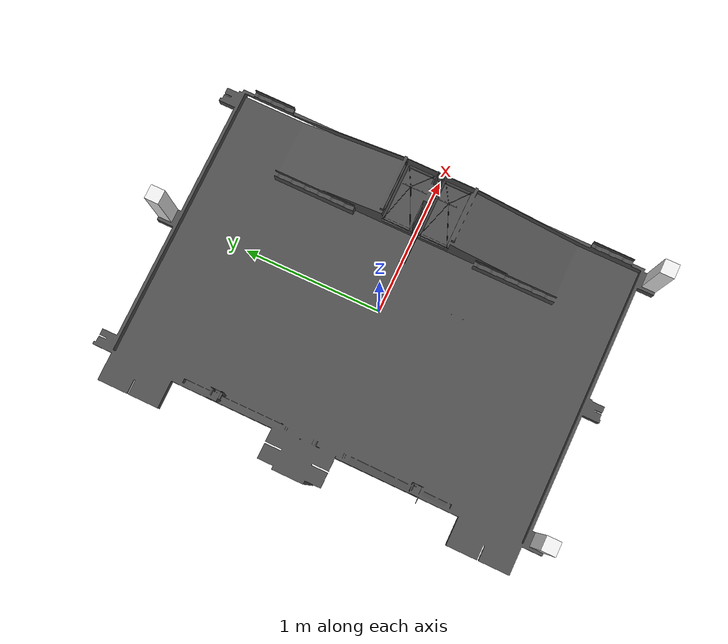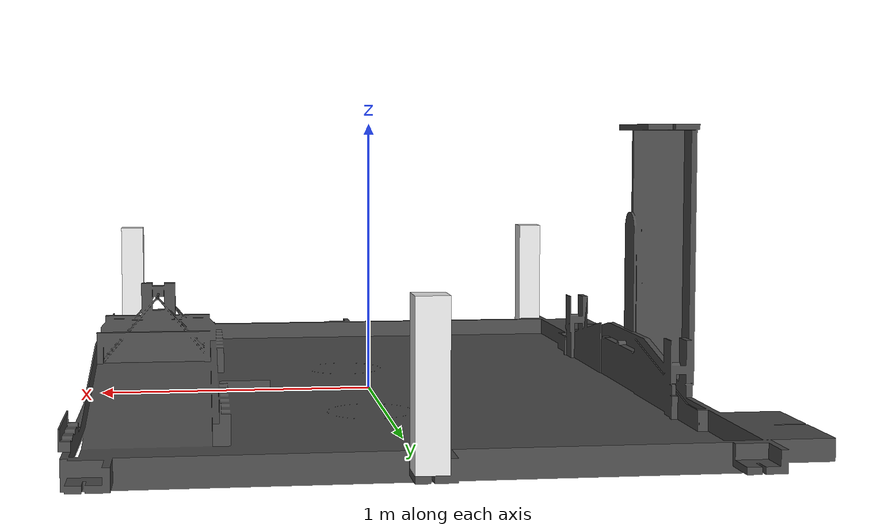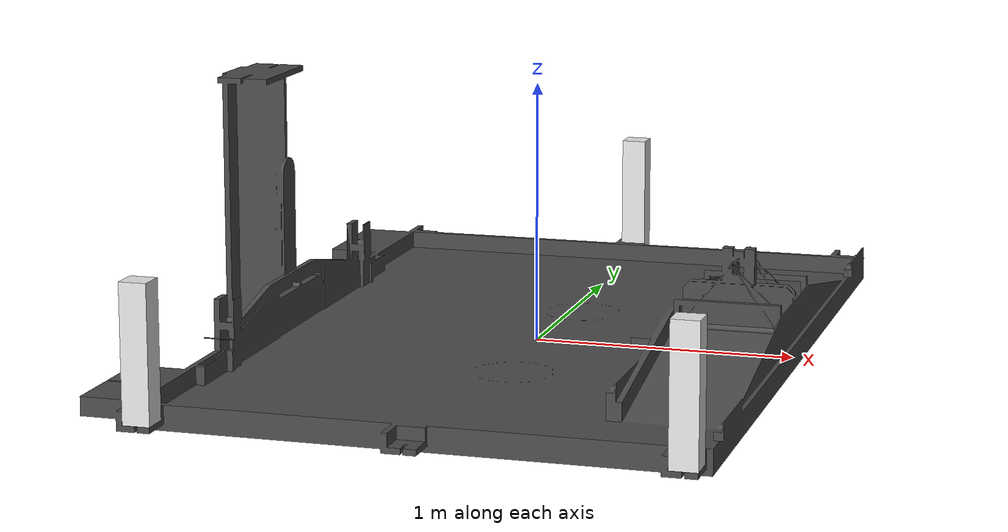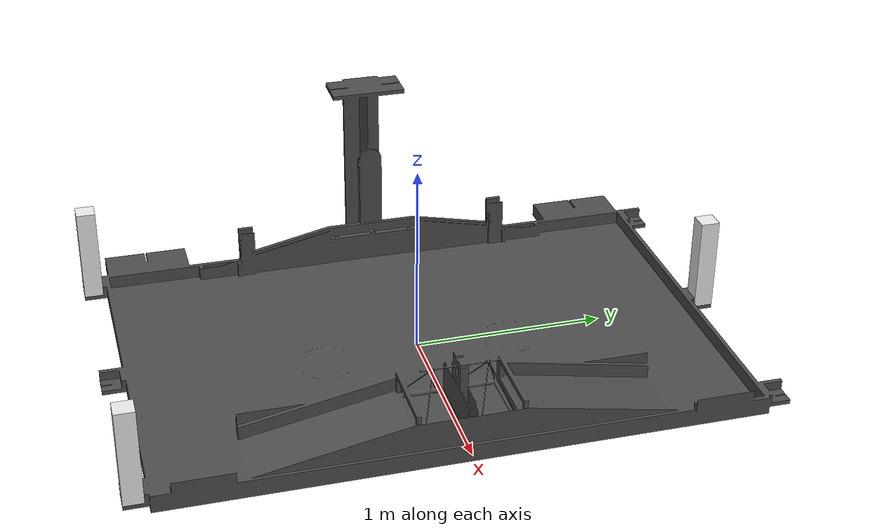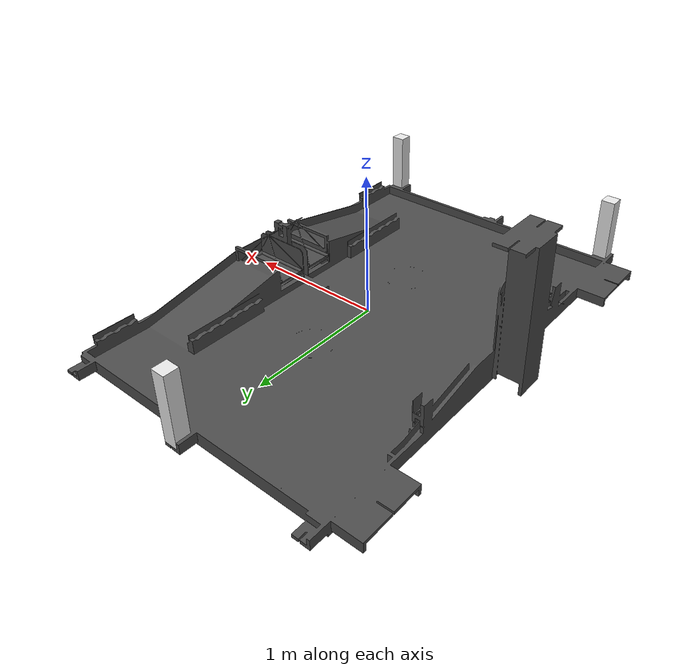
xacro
<?xml version="1.0"?>
<robot name="table_2019" xmlns:xacro="http://ros.org/wiki/xacro">
	<xacro:property name="world_laser_retro" value="10.0"/>

    <xacro:property name="beacon_width" value="0.1" />
    <xacro:property name="beacon_height" value="0.5" />
	<xacro:property name="beacon_laser_retro" value="100.0"/>
	<xacro:property name="beacon_side" value="1"/>

    <link name="world"/>

	<link name="table_2019">
		<visual>
			<geometry>
				<mesh filename="package://sd_gazebo/meshes/table_2019.stl" scale="0.001 0.001 0.001"/>
			</geometry>
    		<origin xyz="0.0 0.0 0.0" rpy="0 0 0"/>
		</visual>
		<collision>
			<geometry>
				<mesh filename="package://sd_gazebo/meshes/table_2019.stl" scale="0.001 0.001 0.001"/>
			</geometry>
    		<origin xyz="0.0 0.0 0.0" rpy="0 0 0"/>
    		<laser_retro>${world_laser_retro}</laser_retro>
		</collision>
        <inertial>
			<mass value="100.0"/>
			<inertia ixx="1" ixy="0.0" ixz="0.0" iyy="1" iyz="0.0" izz="1"/>
        </inertial>
	</link>

	<gazebo reference="table_2019">
		<mu1>Inf</mu1>
		<mu2>Inf</mu2>
		<material>Gazebo/DarkGrey</material>
		<static>true</static>
		<visual>
    		<laser_retro>${world_laser_retro}</laser_retro>
		</visual>
		<collision>
    		<laser_retro>${world_laser_retro}</laser_retro>
		</collision>
	</gazebo>

    <joint name="world_to_table_2019" type="fixed">
	    <parent link="world"/>
	    <child link="table_2019"/>
    	<origin xyz="0 0 0" rpy="0 0 0"/>
	</joint>

	<xacro:macro name="beacon" params="beacon_name beacon_x beacon_y">
		<link name="${beacon_name}">
			<visual>
	            <geometry>
	                <box size="${beacon_width} ${beacon_width} ${beacon_height}"/>
	            </geometry>
	    		<origin xyz="0 0 ${beacon_height/2}" rpy="0 0 0"/>
	            <material name="white"/>
			</visual>
			<collision>
	            <geometry>
	                <box size="${beacon_width} ${beacon_width} ${beacon_height}"/>
	            </geometry>
	    		<origin xyz="0 0 ${beacon_height/2}" rpy="0 0 0"/>
			</collision>
	        <inertial>
				<mass value="0.3"/>
				<inertia ixx="2e-4" ixy="0.0" ixz="0.0" iyy="2e-4" iyz="0.0" izz="2.5e-4"/>
	        </inertial>
        </link>

        <joint name="world_to_${beacon_name}" type="fixed">
		    <parent link="world"/>
		    <child link="${beacon_name}"/>
	    	<origin xyz="${beacon_x} ${beacon_y} 0.022" rpy="0 0 0"/>
		</joint>

		<gazebo reference="${beacon_name}">
			<material>Gazebo/White</material>
			<visual>
	    		<laser_retro>${beacon_laser_retro}</laser_retro>
			</visual>
			<collision>
	    		<laser_retro>${beacon_laser_retro}</laser_retro>
			</collision>
		</gazebo>
	</xacro:macro>

	<beacon beacon_name="beacon_1" beacon_x="-0.95" beacon_y="${beacon_side * -1.594}"/>
	<beacon beacon_name="beacon_2" beacon_x="0.0" beacon_y="${beacon_side * 1.594}"/>
	<beacon beacon_name="beacon_3" beacon_x="0.95" beacon_y="${beacon_side * -1.594}"/>
</robot>
